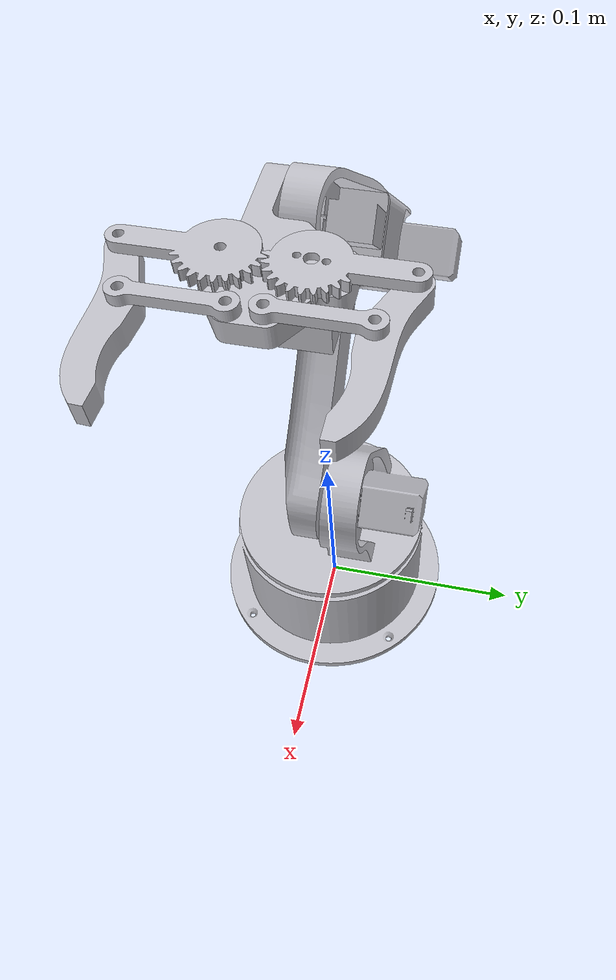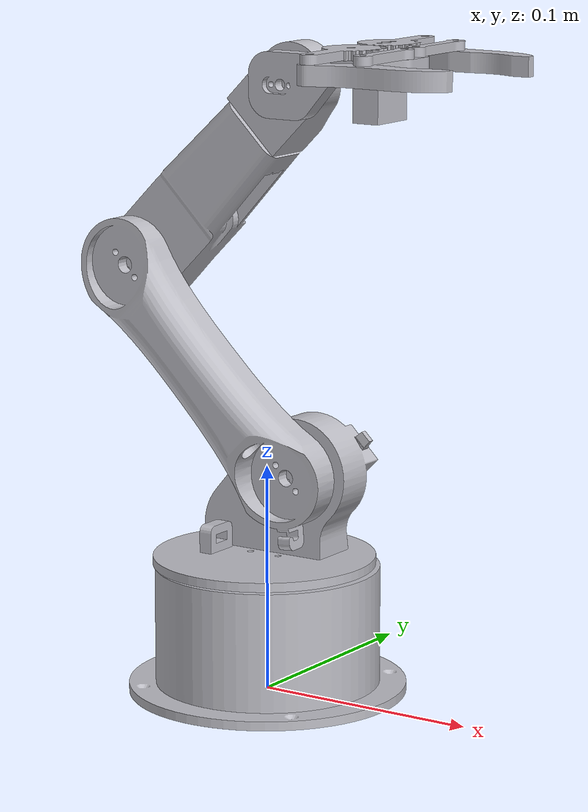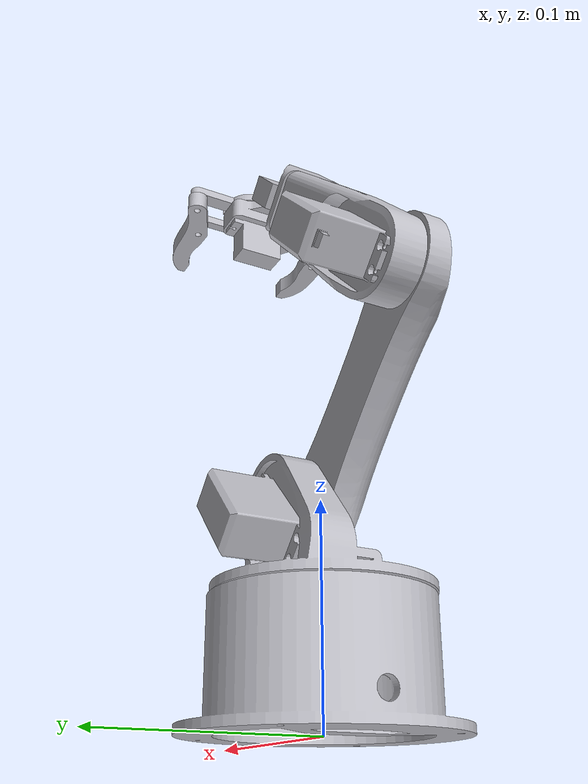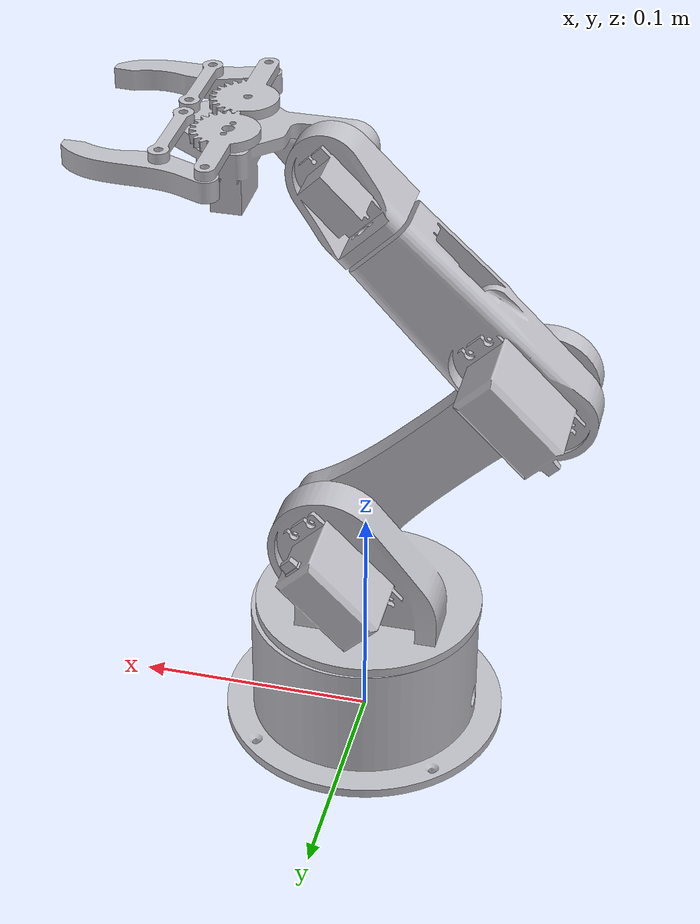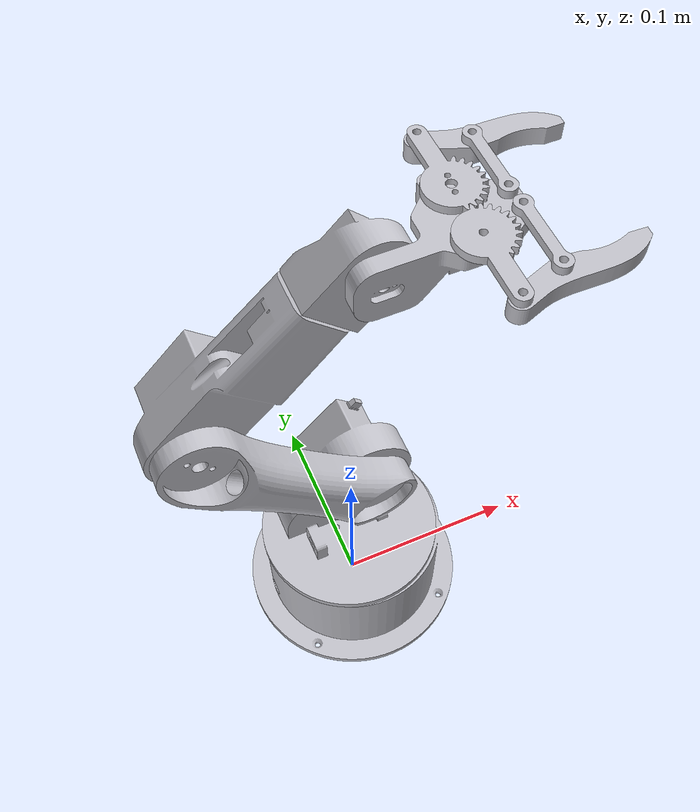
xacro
<?xml version="1.0" ?>
<robot name="robot_arm" xmlns:xacro="http://www.ros.org/wiki/xacro">

<xacro:include filename="$(find robot_arm_description)/urdf/materials.xacro" />
<xacro:include filename="$(find robot_arm_description)/urdf/robot_arm.trans" />
<xacro:include filename="$(find robot_arm_description)/urdf/robot_arm.gazebo" />
<link name="base_link">
  <inertial>
    <origin rpy="0 0 0" xyz="0.0020664042300333053 6.466553198827756e-10 0.02419226403185804"/>
    <mass value="0.16728828356549438"/>
    <inertia ixx="0.000174" ixy="-0.0" ixz="-7e-06" iyy="0.000194" iyz="0.0" izz="0.000278"/>
  </inertial>
  <visual>
    <origin rpy="0 0 0" xyz="0 0 0"/>
    <geometry>
      <mesh filename="package://robot_arm_description/meshes/base_link.stl" scale="0.001 0.001 0.001"/>
    </geometry>
    <material name="silver"/>
  </visual>
  <collision>
    <origin rpy="0 0 0" xyz="0 0 0"/>
    <geometry>
      <mesh filename="package://robot_arm_description/meshes/base_link.stl" scale="0.001 0.001 0.001"/>
    </geometry>
  </collision>
</link>

<link name="tool_1">
  <inertial>
    <origin rpy="0 0 0" xyz="0.029681331473707738 0.005034683436302485 0.003678054770134831"/>
    <mass value="0.03200159540129433"/>
    <inertia ixx="6e-06" ixy="-3e-06" ixz="-1e-06" iyy="1.3e-05" iyz="0.0" izz="1.5e-05"/>
  </inertial>
  <visual>
    <origin rpy="0 0 0" xyz="-0.012177 0.00285 -0.266299"/>
    <geometry>
      <mesh filename="package://robot_arm_description/meshes/tool_1.stl" scale="0.001 0.001 0.001"/>
    </geometry>
    <material name="silver"/>
  </visual>
  <collision>
    <origin rpy="0 0 0" xyz="-0.012177 0.00285 -0.266299"/>
    <geometry>
      <mesh filename="package://robot_arm_description/meshes/tool_1.stl" scale="0.001 0.001 0.001"/>
    </geometry>
  </collision>
</link>

<link name="wrist_1">
  <inertial>
    <origin rpy="0 0 0" xyz="0.010246135859655846 -0.003065519867974221 0.017362349593195214"/>
    <mass value="0.03047143481755528"/>
    <inertia ixx="5e-06" ixy="0.0" ixz="-1e-06" iyy="7e-06" iyz="0.0" izz="5e-06"/>
  </inertial>
  <visual>
    <origin rpy="0 0 0" xyz="0.004157 -0.0125 -0.242894"/>
    <geometry>
      <mesh filename="package://robot_arm_description/meshes/wrist_1.stl" scale="0.001 0.001 0.001"/>
    </geometry>
    <material name="silver"/>
  </visual>
  <collision>
    <origin rpy="0 0 0" xyz="0.004157 -0.0125 -0.242894"/>
    <geometry>
      <mesh filename="package://robot_arm_description/meshes/wrist_1.stl" scale="0.001 0.001 0.001"/>
    </geometry>
  </collision>
</link>

<link name="lower_arm_1">
  <inertial>
    <origin rpy="0 0 0" xyz="0.021975491384407124 0.016711488741899205 0.021952022901357227"/>
    <mass value="0.11769779065313278"/>
    <inertia ixx="8e-05" ixy="1e-05" ixz="-5.2e-05" iyy="0.000125" iyz="1e-05" izz="8e-05"/>
  </inertial>
  <visual>
    <origin rpy="0 0 0" xyz="0.072534 -0.0018 -0.181729"/>
    <geometry>
      <mesh filename="package://robot_arm_description/meshes/lower_arm_1.stl" scale="0.001 0.001 0.001"/>
    </geometry>
    <material name="silver"/>
  </visual>
  <collision>
    <origin rpy="0 0 0" xyz="0.072534 -0.0018 -0.181729"/>
    <geometry>
      <mesh filename="package://robot_arm_description/meshes/lower_arm_1.stl" scale="0.001 0.001 0.001"/>
    </geometry>
  </collision>
</link>

<link name="upper_arm_1">
  <inertial>
    <origin rpy="0 0 0" xyz="-0.041522617129985125 -0.007768202679353794 0.04133826671607861"/>
    <mass value="0.5054466041808731"/>
    <inertia ixx="0.000474" ixy="1e-06" ixz="0.000396" iyy="0.000903" iyz="-1e-06" izz="0.000463"/>
  </inertial>
  <visual>
    <origin rpy="0 0 0" xyz="-0.012319 -0.0018 -0.096876"/>
    <geometry>
      <mesh filename="package://robot_arm_description/meshes/upper_arm_1.stl" scale="0.001 0.001 0.001"/>
    </geometry>
    <material name="silver"/>
  </visual>
  <collision>
    <origin rpy="0 0 0" xyz="-0.012319 -0.0018 -0.096876"/>
    <geometry>
      <mesh filename="package://robot_arm_description/meshes/upper_arm_1.stl" scale="0.001 0.001 0.001"/>
    </geometry>
  </collision>
</link>

<link name="waist_1">
  <inertial>
    <origin rpy="0 0 0" xyz="0.0032447569034795187 0.013877745202582331 0.022630817273136372"/>
    <mass value="0.13143588308849458"/>
    <inertia ixx="9e-05" ixy="-4e-06" ixz="-1.3e-05" iyy="9.1e-05" iyz="-1.7e-05" izz="9.6e-05"/>
  </inertial>
  <visual>
    <origin rpy="0 0 0" xyz="0.0016 -0.0 -0.0566"/>
    <geometry>
      <mesh filename="package://robot_arm_description/meshes/waist_1.stl" scale="0.001 0.001 0.001"/>
    </geometry>
    <material name="silver"/>
  </visual>
  <collision>
    <origin rpy="0 0 0" xyz="0.0016 -0.0 -0.0566"/>
    <geometry>
      <mesh filename="package://robot_arm_description/meshes/waist_1.stl" scale="0.001 0.001 0.001"/>
    </geometry>
  </collision>
</link>

<link name="gear_l_1">
  <inertial>
    <origin rpy="0 0 0" xyz="0.0005899134384872579 0.005667053218810088 0.0020002649471745904"/>
    <mass value="0.0033099589734535495"/>
    <inertia ixx="0.0" ixy="0.0" ixz="-0.0" iyy="0.0" iyz="-0.0" izz="1e-06"/>
  </inertial>
  <visual>
    <origin rpy="0 0 0" xyz="-0.050177 -0.01505 -0.280299"/>
    <geometry>
      <mesh filename="package://robot_arm_description/meshes/gear_l_1.stl" scale="0.001 0.001 0.001"/>
    </geometry>
    <material name="silver"/>
  </visual>
  <collision>
    <origin rpy="0 0 0" xyz="-0.050177 -0.01505 -0.280299"/>
    <geometry>
      <mesh filename="package://robot_arm_description/meshes/gear_l_1.stl" scale="0.001 0.001 0.001"/>
    </geometry>
  </collision>
</link>

<link name="gear_r_1">
  <inertial>
    <origin rpy="0 0 0" xyz="0.0005979538243359381 -0.005579192111270146 0.002000264947174646"/>
    <mass value="0.0034076811371724575"/>
    <inertia ixx="0.0" ixy="-0.0" ixz="-0.0" iyy="0.0" iyz="0.0" izz="1e-06"/>
  </inertial>
  <visual>
    <origin rpy="0 0 0" xyz="-0.050177 0.01185 -0.280299"/>
    <geometry>
      <mesh filename="package://robot_arm_description/meshes/gear_r_1.stl" scale="0.001 0.001 0.001"/>
    </geometry>
    <material name="silver"/>
  </visual>
  <collision>
    <origin rpy="0 0 0" xyz="-0.050177 0.01185 -0.280299"/>
    <geometry>
      <mesh filename="package://robot_arm_description/meshes/gear_r_1.stl" scale="0.001 0.001 0.001"/>
    </geometry>
  </collision>
</link>

<link name="passiv_link_left_1">
  <inertial>
    <origin rpy="0 0 0" xyz="-7.344014011954891e-05 -0.015500139171575316 0.0020002649471748124"/>
    <mass value="0.0010304035130082416"/>
    <inertia ixx="0.0" ixy="-0.0" ixz="-0.0" iyy="0.0" iyz="0.0" izz="0.0"/>
  </inertial>
  <visual>
    <origin rpy="0 0 0" xyz="-0.070326 -0.037154 -0.280299"/>
    <geometry>
      <mesh filename="package://robot_arm_description/meshes/passiv_link_left_1.stl" scale="0.001 0.001 0.001"/>
    </geometry>
    <material name="silver"/>
  </visual>
  <collision>
    <origin rpy="0 0 0" xyz="-0.070326 -0.037154 -0.280299"/>
    <geometry>
      <mesh filename="package://robot_arm_description/meshes/passiv_link_left_1.stl" scale="0.001 0.001 0.001"/>
    </geometry>
  </collision>
</link>

<link name="finger_l_1">
  <inertial>
    <origin rpy="0 0 0" xyz="0.0264996913257496 -0.006416941777612359 -0.00424973505282511"/>
    <mass value="0.006962678719455662"/>
    <inertia ixx="0.0" ixy="0.0" ixz="0.0" iyy="2e-06" iyz="0.0" izz="2e-06"/>
  </inertial>
  <visual>
    <origin rpy="0 0 0" xyz="-0.050097 -0.0458 -0.280299"/>
    <geometry>
      <mesh filename="package://robot_arm_description/meshes/finger_l_1.stl" scale="0.001 0.001 0.001"/>
    </geometry>
    <material name="silver"/>
  </visual>
  <collision>
    <origin rpy="0 0 0" xyz="-0.050097 -0.0458 -0.280299"/>
    <geometry>
      <mesh filename="package://robot_arm_description/meshes/finger_l_1.stl" scale="0.001 0.001 0.001"/>
    </geometry>
  </collision>
</link>

<link name="passive_link_right_1">
  <inertial>
    <origin rpy="0 0 0" xyz="7.392196295702425e-05 0.015499801346418072 0.002000264947174535"/>
    <mass value="0.0010304035130082416"/>
    <inertia ixx="0.0" ixy="-0.0" ixz="-0.0" iyy="0.0" iyz="0.0" izz="0.0"/>
  </inertial>
  <visual>
    <origin rpy="0 0 0" xyz="-0.070876 0.03521 -0.280299"/>
    <geometry>
      <mesh filename="package://robot_arm_description/meshes/passive_link_right_1.stl" scale="0.001 0.001 0.001"/>
    </geometry>
    <material name="silver"/>
  </visual>
  <collision>
    <origin rpy="0 0 0" xyz="-0.070876 0.03521 -0.280299"/>
    <geometry>
      <mesh filename="package://robot_arm_description/meshes/passive_link_right_1.stl" scale="0.001 0.001 0.001"/>
    </geometry>
  </collision>
</link>

<link name="finger_r_1">
  <inertial>
    <origin rpy="0 0 0" xyz="0.02684411509474962 0.00478045272417623 -0.0042497350528256095"/>
    <mass value="0.0069626787194557215"/>
    <inertia ixx="0.0" ixy="-0.0" ixz="-0.0" iyy="2e-06" iyz="0.0" izz="2e-06"/>
  </inertial>
  <visual>
    <origin rpy="0 0 0" xyz="-0.050154 0.0426 -0.280299"/>
    <geometry>
      <mesh filename="package://robot_arm_description/meshes/finger_r_1.stl" scale="0.001 0.001 0.001"/>
    </geometry>
    <material name="silver"/>
  </visual>
  <collision>
    <origin rpy="0 0 0" xyz="-0.050154 0.0426 -0.280299"/>
    <geometry>
      <mesh filename="package://robot_arm_description/meshes/finger_r_1.stl" scale="0.001 0.001 0.001"/>
    </geometry>
  </collision>
</link>

<joint name="pitch" type="continuous">
  <origin rpy="0 0 0" xyz="0.016334 -0.01535 0.023405"/>
  <parent link="wrist_1"/>
  <child link="tool_1"/>
  <axis xyz="0.0 -1.0 -0.0"/>
</joint>

<joint name="roll" type="continuous">
  <origin rpy="0 0 0" xyz="0.068377 0.0107 0.061165"/>
  <parent link="lower_arm_1"/>
  <child link="wrist_1"/>
  <axis xyz="0.707107 -0.0 0.707107"/>
</joint>

<joint name="elbow" type="continuous">
  <origin rpy="0 0 0" xyz="-0.084853 0.0 0.084853"/>
  <parent link="upper_arm_1"/>
  <child link="lower_arm_1"/>
  <axis xyz="-0.0 1.0 0.0"/>
</joint>

<joint name="shoulder" type="continuous">
  <origin rpy="0 0 0" xyz="0.013919 0.0018 0.040276"/>
  <parent link="waist_1"/>
  <child link="upper_arm_1"/>
  <axis xyz="-0.0 -1.0 -0.0"/>
</joint>

<joint name="base" type="continuous">
  <origin rpy="0 0 0" xyz="-0.0016 0.0 0.0566"/>
  <parent link="base_link"/>
  <child link="waist_1"/>
  <axis xyz="0.0 0.0 1.0"/>
</joint>

<joint name="finger_gear_left" type="revolute">
  <origin rpy="0 0 0" xyz="0.038 0.0179 0.014"/>
  <parent link="tool_1"/>
  <child link="gear_l_1"/>
  <axis xyz="0.0 -0.0 1.0"/>
  <limit effort="100" lower="-1.570796" upper="0.0" velocity="100"/>
</joint>

<joint name="finger_gear_right" type="continuous">
  <origin rpy="0 0 0" xyz="0.038 -0.009 0.014"/>
  <parent link="tool_1"/>
  <child link="gear_r_1"/>
  <axis xyz="0.0 -0.0 1.0"/>
</joint>

<joint name="l2f_left" type="revolute">
  <origin rpy="0 0 0" xyz="0.020229 -0.008646 0.0"/>
  <parent link="finger_l_1"/>
  <child link="passiv_link_left_1"/>
  <axis xyz="-0.0 0.0 1.0"/>
  <limit effort="100" lower="-1.570796" upper="0.0" velocity="100"/>
</joint>

<joint name="f2g_left" type="revolute">
  <origin rpy="0 0 0" xyz="-8e-05 0.03075 0.0"/>
  <parent link="gear_l_1"/>
  <child link="finger_l_1"/>
  <axis xyz="0.0 0.0 1.0"/>
  <limit effort="100" lower="0.0" upper="1.570796" velocity="100"/>
</joint>

<joint name="f2l_right" type="revolute">
  <origin rpy="0 0 0" xyz="0.020722 0.00739 0.0"/>
  <parent link="finger_r_1"/>
  <child link="passive_link_right_1"/>
  <axis xyz="-0.0 0.0 -1.0"/>
  <limit effort="100" lower="-1.570796" upper="0.0" velocity="100"/>
</joint>

<joint name="f2g_right" type="revolute">
  <origin rpy="0 0 0" xyz="-2.3e-05 -0.03075 0.0"/>
  <parent link="gear_r_1"/>
  <child link="finger_r_1"/>
  <axis xyz="0.0 -0.0 1.0"/>
  <limit effort="100" lower="-1.570796" upper="0.0" velocity="100"/>
</joint>

</robot>

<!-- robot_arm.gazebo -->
<robot name="robot_arm" xmlns:xacro="http://www.ros.org/wiki/xacro" >

<xacro:property name="body_color" value="Gazebo/Silver" />

<gazebo>
  <plugin filename="libgazebo_ros_control.so" name="control"/>
</gazebo>
<gazebo reference="base_link">
  <material>${body_color}</material>
  <mu1>0.2</mu1>
  <mu2>0.2</mu2>
  <selfCollide>true</selfCollide>
  <gravity>true</gravity>
</gazebo>

<gazebo reference="tool_1">
  <material>${body_color}</material>
  <mu1>0.2</mu1>
  <mu2>0.2</mu2>
  <selfCollide>true</selfCollide>
</gazebo>

<gazebo reference="wrist_1">
  <material>${body_color}</material>
  <mu1>0.2</mu1>
  <mu2>0.2</mu2>
  <selfCollide>true</selfCollide>
</gazebo>

<gazebo reference="lower_arm_1">
  <material>${body_color}</material>
  <mu1>0.2</mu1>
  <mu2>0.2</mu2>
  <selfCollide>true</selfCollide>
</gazebo>

<gazebo reference="upper_arm_1">
  <material>${body_color}</material>
  <mu1>0.2</mu1>
  <mu2>0.2</mu2>
  <selfCollide>true</selfCollide>
</gazebo>

<gazebo reference="waist_1">
  <material>${body_color}</material>
  <mu1>0.2</mu1>
  <mu2>0.2</mu2>
  <selfCollide>true</selfCollide>
</gazebo>

<gazebo reference="gear_l_1">
  <material>${body_color}</material>
  <mu1>0.2</mu1>
  <mu2>0.2</mu2>
  <selfCollide>true</selfCollide>
</gazebo>

<gazebo reference="gear_r_1">
  <material>${body_color}</material>
  <mu1>0.2</mu1>
  <mu2>0.2</mu2>
  <selfCollide>true</selfCollide>
</gazebo>

<gazebo reference="passiv_link_left_1">
  <material>${body_color}</material>
  <mu1>0.2</mu1>
  <mu2>0.2</mu2>
  <selfCollide>true</selfCollide>
</gazebo>

<gazebo reference="finger_l_1">
  <material>${body_color}</material>
  <mu1>0.2</mu1>
  <mu2>0.2</mu2>
  <selfCollide>true</selfCollide>
</gazebo>

<gazebo reference="passive_link_right_1">
  <material>${body_color}</material>
  <mu1>0.2</mu1>
  <mu2>0.2</mu2>
  <selfCollide>true</selfCollide>
</gazebo>

<gazebo reference="finger_r_1">
  <material>${body_color}</material>
  <mu1>0.2</mu1>
  <mu2>0.2</mu2>
  <selfCollide>true</selfCollide>
</gazebo>

</robot>
